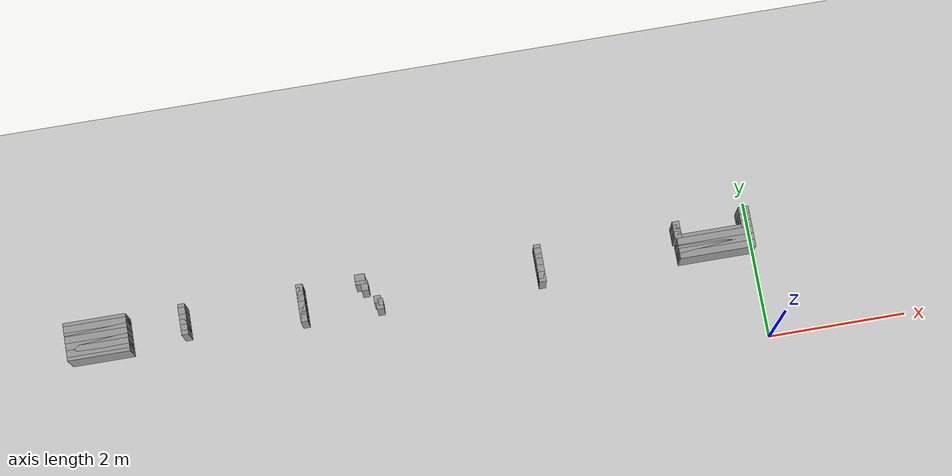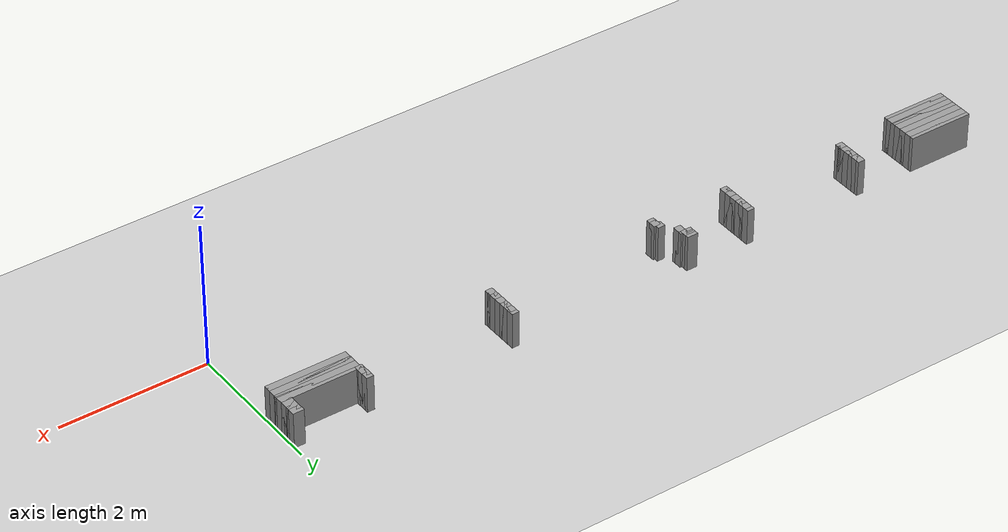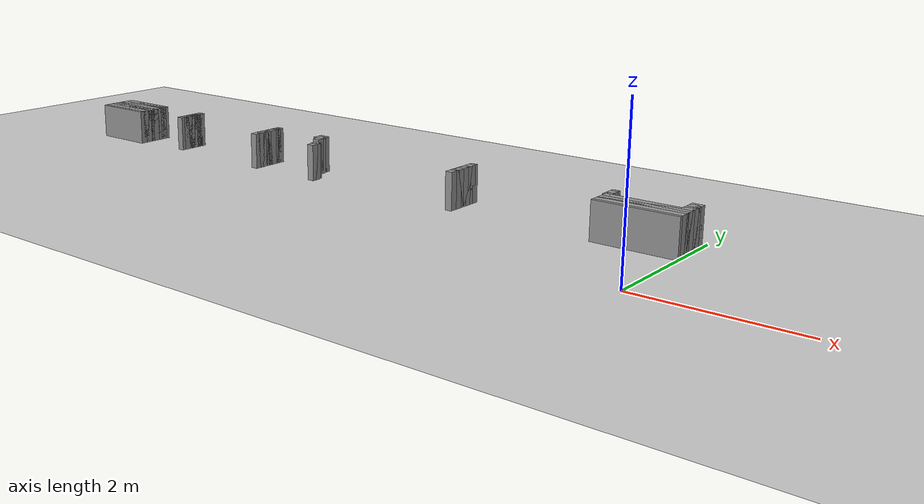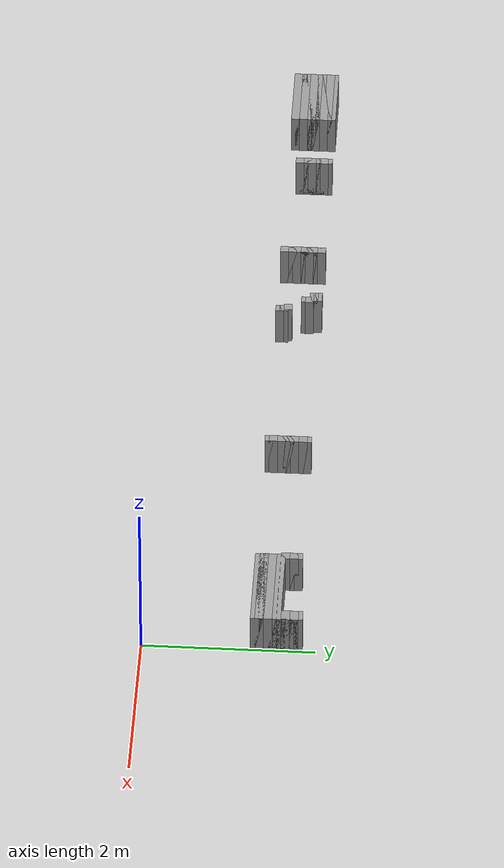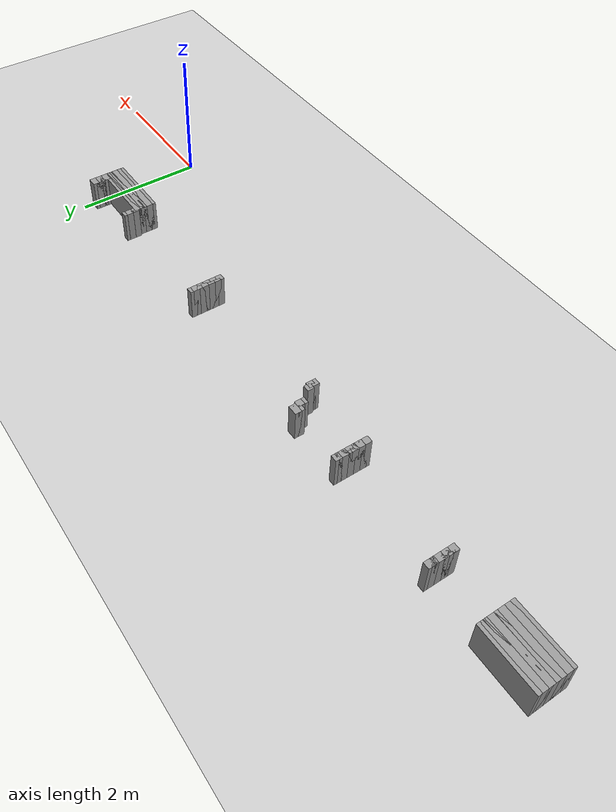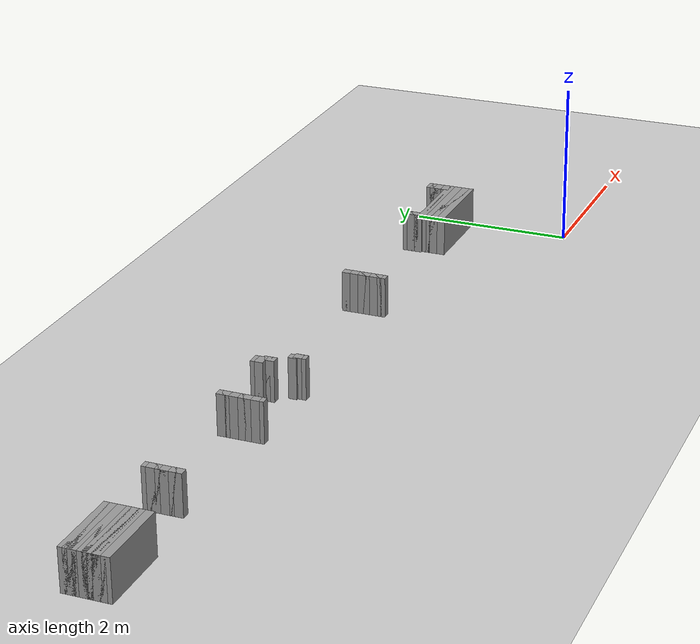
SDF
<sdf version="1.6">
 <world name="GridMap">
  <include><uri>model://sun</uri></include>
  <include><uri>model://ground_plane</uri></include>
  <model name="GridMap">
   <link name="Wall_(11.0,26.0)">
    <collision name="Wall_(11.0,26.0)_Collision">
     <geometry><box><size>1.1 0.1 0.5</size></box></geometry>
     <pose>-0.55 1.3 0.25 0 -0 0</pose>
    </collision>
    <inertial>
     <mass>0.5</mass>
     <pose>0 0.01 0 0 0 0</pose>
     <inertia><ixx>0.004</ixx><ixy>0.001</ixy><ixz>0</ixz><iyy>0.006</iyy><iyz>0</iyz><izz>0.007</izz></inertia>
    </inertial>
    <visual name="Wall_(11.0,26.0)_Visual">
     <geometry><box><size>1.1 0.1 0.5</size></box></geometry>
     <pose>-0.55 1.3 0.25 0 -0 0</pose>
     <material>
      <script><uri>file://media/materials/scripts/gazebo.material</uri><name>Gazebo/Grey</name></script>
      <ambient>1 1 1 1</ambient>
     </material>
     <meta><layer>0</layer></meta>
    </visual>
   </link>
   <link name="Wall_(62.0,26.0)">
    <collision name="Wall_(62.0,26.0)_Collision">
     <geometry><box><size>0.1 0.1 0.5</size></box></geometry>
     <pose>-3.1 1.3 0.25 0 -0 0</pose>
    </collision>
    <inertial>
     <mass>0.5</mass>
     <pose>0 0.01 0 0 0 0</pose>
     <inertia><ixx>0.004</ixx><ixy>0.001</ixy><ixz>0</ixz><iyy>0.006</iyy><iyz>0</iyz><izz>0.007</izz></inertia>
    </inertial>
    <visual name="Wall_(62.0,26.0)_Visual">
     <geometry><box><size>0.1 0.1 0.5</size></box></geometry>
     <pose>-3.1 1.3 0.25 0 -0 0</pose>
     <material>
      <script><uri>file://media/materials/scripts/gazebo.material</uri><name>Gazebo/Grey</name></script>
      <ambient>1 1 1 1</ambient>
     </material>
     <meta><layer>0</layer></meta>
    </visual>
   </link>
   <link name="Wall_(109.0,26.0)">
    <collision name="Wall_(109.0,26.0)_Collision">
     <geometry><box><size>0.1 0.1 0.5</size></box></geometry>
     <pose>-5.45 1.3 0.25 0 -0 0</pose>
    </collision>
    <inertial>
     <mass>0.5</mass>
     <pose>0 0.01 0 0 0 0</pose>
     <inertia><ixx>0.004</ixx><ixy>0.001</ixy><ixz>0</ixz><iyy>0.006</iyy><iyz>0</iyz><izz>0.007</izz></inertia>
    </inertial>
    <visual name="Wall_(109.0,26.0)_Visual">
     <geometry><box><size>0.1 0.1 0.5</size></box></geometry>
     <pose>-5.45 1.3 0.25 0 -0 0</pose>
     <material>
      <script><uri>file://media/materials/scripts/gazebo.material</uri><name>Gazebo/Grey</name></script>
      <ambient>1 1 1 1</ambient>
     </material>
     <meta><layer>0</layer></meta>
    </visual>
   </link>
   <link name="Wall_(131.0,26.0)">
    <collision name="Wall_(131.0,26.0)_Collision">
     <geometry><box><size>0.1 0.1 0.5</size></box></geometry>
     <pose>-6.550000000000001 1.3 0.25 0 -0 0</pose>
    </collision>
    <inertial>
     <mass>0.5</mass>
     <pose>0 0.01 0 0 0 0</pose>
     <inertia><ixx>0.004</ixx><ixy>0.001</ixy><ixz>0</ixz><iyy>0.006</iyy><iyz>0</iyz><izz>0.007</izz></inertia>
    </inertial>
    <visual name="Wall_(131.0,26.0)_Visual">
     <geometry><box><size>0.1 0.1 0.5</size></box></geometry>
     <pose>-6.550000000000001 1.3 0.25 0 -0 0</pose>
     <material>
      <script><uri>file://media/materials/scripts/gazebo.material</uri><name>Gazebo/Grey</name></script>
      <ambient>1 1 1 1</ambient>
     </material>
     <meta><layer>0</layer></meta>
    </visual>
   </link>
   <link name="Wall_(190.0,26.0)">
    <collision name="Wall_(190.0,26.0)_Collision">
     <geometry><box><size>0.9 0.1 0.5</size></box></geometry>
     <pose>-9.5 1.3 0.25 0 -0 0</pose>
    </collision>
    <inertial>
     <mass>0.5</mass>
     <pose>0 0.01 0 0 0 0</pose>
     <inertia><ixx>0.004</ixx><ixy>0.001</ixy><ixz>0</ixz><iyy>0.006</iyy><iyz>0</iyz><izz>0.007</izz></inertia>
    </inertial>
    <visual name="Wall_(190.0,26.0)_Visual">
     <geometry><box><size>0.9 0.1 0.5</size></box></geometry>
     <pose>-9.5 1.3 0.25 0 -0 0</pose>
     <material>
      <script><uri>file://media/materials/scripts/gazebo.material</uri><name>Gazebo/Grey</name></script>
      <ambient>1 1 1 1</ambient>
     </material>
     <meta><layer>0</layer></meta>
    </visual>
   </link>
   <link name="Wall_(11.0,27.0)">
    <collision name="Wall_(11.0,27.0)_Collision">
     <geometry><box><size>1.1 0.1 0.5</size></box></geometry>
     <pose>-0.55 1.35 0.25 0 -0 0</pose>
    </collision>
    <inertial>
     <mass>0.5</mass>
     <pose>0 0.01 0 0 0 0</pose>
     <inertia><ixx>0.004</ixx><ixy>0.001</ixy><ixz>0</ixz><iyy>0.006</iyy><iyz>0</iyz><izz>0.007</izz></inertia>
    </inertial>
    <visual name="Wall_(11.0,27.0)_Visual">
     <geometry><box><size>1.1 0.1 0.5</size></box></geometry>
     <pose>-0.55 1.35 0.25 0 -0 0</pose>
     <material>
      <script><uri>file://media/materials/scripts/gazebo.material</uri><name>Gazebo/Grey</name></script>
      <ambient>1 1 1 1</ambient>
     </material>
     <meta><layer>0</layer></meta>
    </visual>
   </link>
   <link name="Wall_(62.0,27.0)">
    <collision name="Wall_(62.0,27.0)_Collision">
     <geometry><box><size>0.1 0.1 0.5</size></box></geometry>
     <pose>-3.1 1.35 0.25 0 -0 0</pose>
    </collision>
    <inertial>
     <mass>0.5</mass>
     <pose>0 0.01 0 0 0 0</pose>
     <inertia><ixx>0.004</ixx><ixy>0.001</ixy><ixz>0</ixz><iyy>0.006</iyy><iyz>0</iyz><izz>0.007</izz></inertia>
    </inertial>
    <visual name="Wall_(62.0,27.0)_Visual">
     <geometry><box><size>0.1 0.1 0.5</size></box></geometry>
     <pose>-3.1 1.35 0.25 0 -0 0</pose>
     <material>
      <script><uri>file://media/materials/scripts/gazebo.material</uri><name>Gazebo/Grey</name></script>
      <ambient>1 1 1 1</ambient>
     </material>
     <meta><layer>0</layer></meta>
    </visual>
   </link>
   <link name="Wall_(109.0,27.0)">
    <collision name="Wall_(109.0,27.0)_Collision">
     <geometry><box><size>0.1 0.1 0.5</size></box></geometry>
     <pose>-5.45 1.35 0.25 0 -0 0</pose>
    </collision>
    <inertial>
     <mass>0.5</mass>
     <pose>0 0.01 0 0 0 0</pose>
     <inertia><ixx>0.004</ixx><ixy>0.001</ixy><ixz>0</ixz><iyy>0.006</iyy><iyz>0</iyz><izz>0.007</izz></inertia>
    </inertial>
    <visual name="Wall_(109.0,27.0)_Visual">
     <geometry><box><size>0.1 0.1 0.5</size></box></geometry>
     <pose>-5.45 1.35 0.25 0 -0 0</pose>
     <material>
      <script><uri>file://media/materials/scripts/gazebo.material</uri><name>Gazebo/Grey</name></script>
      <ambient>1 1 1 1</ambient>
     </material>
     <meta><layer>0</layer></meta>
    </visual>
   </link>
   <link name="Wall_(131.0,27.0)">
    <collision name="Wall_(131.0,27.0)_Collision">
     <geometry><box><size>0.1 0.1 0.5</size></box></geometry>
     <pose>-6.550000000000001 1.35 0.25 0 -0 0</pose>
    </collision>
    <inertial>
     <mass>0.5</mass>
     <pose>0 0.01 0 0 0 0</pose>
     <inertia><ixx>0.004</ixx><ixy>0.001</ixy><ixz>0</ixz><iyy>0.006</iyy><iyz>0</iyz><izz>0.007</izz></inertia>
    </inertial>
    <visual name="Wall_(131.0,27.0)_Visual">
     <geometry><box><size>0.1 0.1 0.5</size></box></geometry>
     <pose>-6.550000000000001 1.35 0.25 0 -0 0</pose>
     <material>
      <script><uri>file://media/materials/scripts/gazebo.material</uri><name>Gazebo/Grey</name></script>
      <ambient>1 1 1 1</ambient>
     </material>
     <meta><layer>0</layer></meta>
    </visual>
   </link>
   <link name="Wall_(190.0,27.0)">
    <collision name="Wall_(190.0,27.0)_Collision">
     <geometry><box><size>0.9 0.1 0.5</size></box></geometry>
     <pose>-9.5 1.35 0.25 0 -0 0</pose>
    </collision>
    <inertial>
     <mass>0.5</mass>
     <pose>0 0.01 0 0 0 0</pose>
     <inertia><ixx>0.004</ixx><ixy>0.001</ixy><ixz>0</ixz><iyy>0.006</iyy><iyz>0</iyz><izz>0.007</izz></inertia>
    </inertial>
    <visual name="Wall_(190.0,27.0)_Visual">
     <geometry><box><size>0.9 0.1 0.5</size></box></geometry>
     <pose>-9.5 1.35 0.25 0 -0 0</pose>
     <material>
      <script><uri>file://media/materials/scripts/gazebo.material</uri><name>Gazebo/Grey</name></script>
      <ambient>1 1 1 1</ambient>
     </material>
     <meta><layer>0</layer></meta>
    </visual>
   </link>
   <link name="Wall_(11.0,28.0)">
    <collision name="Wall_(11.0,28.0)_Collision">
     <geometry><box><size>1.1 0.1 0.5</size></box></geometry>
     <pose>-0.55 1.4000000000000001 0.25 0 -0 0</pose>
    </collision>
    <inertial>
     <mass>0.5</mass>
     <pose>0 0.01 0 0 0 0</pose>
     <inertia><ixx>0.004</ixx><ixy>0.001</ixy><ixz>0</ixz><iyy>0.006</iyy><iyz>0</iyz><izz>0.007</izz></inertia>
    </inertial>
    <visual name="Wall_(11.0,28.0)_Visual">
     <geometry><box><size>1.1 0.1 0.5</size></box></geometry>
     <pose>-0.55 1.4000000000000001 0.25 0 -0 0</pose>
     <material>
      <script><uri>file://media/materials/scripts/gazebo.material</uri><name>Gazebo/Grey</name></script>
      <ambient>1 1 1 1</ambient>
     </material>
     <meta><layer>0</layer></meta>
    </visual>
   </link>
   <link name="Wall_(62.0,28.0)">
    <collision name="Wall_(62.0,28.0)_Collision">
     <geometry><box><size>0.1 0.1 0.5</size></box></geometry>
     <pose>-3.1 1.4000000000000001 0.25 0 -0 0</pose>
    </collision>
    <inertial>
     <mass>0.5</mass>
     <pose>0 0.01 0 0 0 0</pose>
     <inertia><ixx>0.004</ixx><ixy>0.001</ixy><ixz>0</ixz><iyy>0.006</iyy><iyz>0</iyz><izz>0.007</izz></inertia>
    </inertial>
    <visual name="Wall_(62.0,28.0)_Visual">
     <geometry><box><size>0.1 0.1 0.5</size></box></geometry>
     <pose>-3.1 1.4000000000000001 0.25 0 -0 0</pose>
     <material>
      <script><uri>file://media/materials/scripts/gazebo.material</uri><name>Gazebo/Grey</name></script>
      <ambient>1 1 1 1</ambient>
     </material>
     <meta><layer>0</layer></meta>
    </visual>
   </link>
   <link name="Wall_(109.5,28.0)">
    <collision name="Wall_(109.5,28.0)_Collision">
     <geometry><box><size>0.1 0.1 0.5</size></box></geometry>
     <pose>-5.4750000000000005 1.4000000000000001 0.25 0 -0 0</pose>
    </collision>
    <inertial>
     <mass>0.5</mass>
     <pose>0 0.01 0 0 0 0</pose>
     <inertia><ixx>0.004</ixx><ixy>0.001</ixy><ixz>0</ixz><iyy>0.006</iyy><iyz>0</iyz><izz>0.007</izz></inertia>
    </inertial>
    <visual name="Wall_(109.5,28.0)_Visual">
     <geometry><box><size>0.1 0.1 0.5</size></box></geometry>
     <pose>-5.4750000000000005 1.4000000000000001 0.25 0 -0 0</pose>
     <material>
      <script><uri>file://media/materials/scripts/gazebo.material</uri><name>Gazebo/Grey</name></script>
      <ambient>1 1 1 1</ambient>
     </material>
     <meta><layer>0</layer></meta>
    </visual>
   </link>
   <link name="Wall_(131.0,28.0)">
    <collision name="Wall_(131.0,28.0)_Collision">
     <geometry><box><size>0.1 0.1 0.5</size></box></geometry>
     <pose>-6.550000000000001 1.4000000000000001 0.25 0 -0 0</pose>
    </collision>
    <inertial>
     <mass>0.5</mass>
     <pose>0 0.01 0 0 0 0</pose>
     <inertia><ixx>0.004</ixx><ixy>0.001</ixy><ixz>0</ixz><iyy>0.006</iyy><iyz>0</iyz><izz>0.007</izz></inertia>
    </inertial>
    <visual name="Wall_(131.0,28.0)_Visual">
     <geometry><box><size>0.1 0.1 0.5</size></box></geometry>
     <pose>-6.550000000000001 1.4000000000000001 0.25 0 -0 0</pose>
     <material>
      <script><uri>file://media/materials/scripts/gazebo.material</uri><name>Gazebo/Grey</name></script>
      <ambient>1 1 1 1</ambient>
     </material>
     <meta><layer>0</layer></meta>
    </visual>
   </link>
   <link name="Wall_(165.0,28.0)">
    <collision name="Wall_(165.0,28.0)_Collision">
     <geometry><box><size>0.1 0.1 0.5</size></box></geometry>
     <pose>-8.25 1.4000000000000001 0.25 0 -0 0</pose>
    </collision>
    <inertial>
     <mass>0.5</mass>
     <pose>0 0.01 0 0 0 0</pose>
     <inertia><ixx>0.004</ixx><ixy>0.001</ixy><ixz>0</ixz><iyy>0.006</iyy><iyz>0</iyz><izz>0.007</izz></inertia>
    </inertial>
    <visual name="Wall_(165.0,28.0)_Visual">
     <geometry><box><size>0.1 0.1 0.5</size></box></geometry>
     <pose>-8.25 1.4000000000000001 0.25 0 -0 0</pose>
     <material>
      <script><uri>file://media/materials/scripts/gazebo.material</uri><name>Gazebo/Grey</name></script>
      <ambient>1 1 1 1</ambient>
     </material>
     <meta><layer>0</layer></meta>
    </visual>
   </link>
   <link name="Wall_(190.0,28.0)">
    <collision name="Wall_(190.0,28.0)_Collision">
     <geometry><box><size>0.9 0.1 0.5</size></box></geometry>
     <pose>-9.5 1.4000000000000001 0.25 0 -0 0</pose>
    </collision>
    <inertial>
     <mass>0.5</mass>
     <pose>0 0.01 0 0 0 0</pose>
     <inertia><ixx>0.004</ixx><ixy>0.001</ixy><ixz>0</ixz><iyy>0.006</iyy><iyz>0</iyz><izz>0.007</izz></inertia>
    </inertial>
    <visual name="Wall_(190.0,28.0)_Visual">
     <geometry><box><size>0.9 0.1 0.5</size></box></geometry>
     <pose>-9.5 1.4000000000000001 0.25 0 -0 0</pose>
     <material>
      <script><uri>file://media/materials/scripts/gazebo.material</uri><name>Gazebo/Grey</name></script>
      <ambient>1 1 1 1</ambient>
     </material>
     <meta><layer>0</layer></meta>
    </visual>
   </link>
   <link name="Wall_(11.0,29.0)">
    <collision name="Wall_(11.0,29.0)_Collision">
     <geometry><box><size>1.1 0.1 0.5</size></box></geometry>
     <pose>-0.55 1.4500000000000002 0.25 0 -0 0</pose>
    </collision>
    <inertial>
     <mass>0.5</mass>
     <pose>0 0.01 0 0 0 0</pose>
     <inertia><ixx>0.004</ixx><ixy>0.001</ixy><ixz>0</ixz><iyy>0.006</iyy><iyz>0</iyz><izz>0.007</izz></inertia>
    </inertial>
    <visual name="Wall_(11.0,29.0)_Visual">
     <geometry><box><size>1.1 0.1 0.5</size></box></geometry>
     <pose>-0.55 1.4500000000000002 0.25 0 -0 0</pose>
     <material>
      <script><uri>file://media/materials/scripts/gazebo.material</uri><name>Gazebo/Grey</name></script>
      <ambient>1 1 1 1</ambient>
     </material>
     <meta><layer>0</layer></meta>
    </visual>
   </link>
   <link name="Wall_(62.0,29.0)">
    <collision name="Wall_(62.0,29.0)_Collision">
     <geometry><box><size>0.1 0.1 0.5</size></box></geometry>
     <pose>-3.1 1.4500000000000002 0.25 0 -0 0</pose>
    </collision>
    <inertial>
     <mass>0.5</mass>
     <pose>0 0.01 0 0 0 0</pose>
     <inertia><ixx>0.004</ixx><ixy>0.001</ixy><ixz>0</ixz><iyy>0.006</iyy><iyz>0</iyz><izz>0.007</izz></inertia>
    </inertial>
    <visual name="Wall_(62.0,29.0)_Visual">
     <geometry><box><size>0.1 0.1 0.5</size></box></geometry>
     <pose>-3.1 1.4500000000000002 0.25 0 -0 0</pose>
     <material>
      <script><uri>file://media/materials/scripts/gazebo.material</uri><name>Gazebo/Grey</name></script>
      <ambient>1 1 1 1</ambient>
     </material>
     <meta><layer>0</layer></meta>
    </visual>
   </link>
   <link name="Wall_(131.0,29.0)">
    <collision name="Wall_(131.0,29.0)_Collision">
     <geometry><box><size>0.1 0.1 0.5</size></box></geometry>
     <pose>-6.550000000000001 1.4500000000000002 0.25 0 -0 0</pose>
    </collision>
    <inertial>
     <mass>0.5</mass>
     <pose>0 0.01 0 0 0 0</pose>
     <inertia><ixx>0.004</ixx><ixy>0.001</ixy><ixz>0</ixz><iyy>0.006</iyy><iyz>0</iyz><izz>0.007</izz></inertia>
    </inertial>
    <visual name="Wall_(131.0,29.0)_Visual">
     <geometry><box><size>0.1 0.1 0.5</size></box></geometry>
     <pose>-6.550000000000001 1.4500000000000002 0.25 0 -0 0</pose>
     <material>
      <script><uri>file://media/materials/scripts/gazebo.material</uri><name>Gazebo/Grey</name></script>
      <ambient>1 1 1 1</ambient>
     </material>
     <meta><layer>0</layer></meta>
    </visual>
   </link>
   <link name="Wall_(165.0,29.0)">
    <collision name="Wall_(165.0,29.0)_Collision">
     <geometry><box><size>0.1 0.1 0.5</size></box></geometry>
     <pose>-8.25 1.4500000000000002 0.25 0 -0 0</pose>
    </collision>
    <inertial>
     <mass>0.5</mass>
     <pose>0 0.01 0 0 0 0</pose>
     <inertia><ixx>0.004</ixx><ixy>0.001</ixy><ixz>0</ixz><iyy>0.006</iyy><iyz>0</iyz><izz>0.007</izz></inertia>
    </inertial>
    <visual name="Wall_(165.0,29.0)_Visual">
     <geometry><box><size>0.1 0.1 0.5</size></box></geometry>
     <pose>-8.25 1.4500000000000002 0.25 0 -0 0</pose>
     <material>
      <script><uri>file://media/materials/scripts/gazebo.material</uri><name>Gazebo/Grey</name></script>
      <ambient>1 1 1 1</ambient>
     </material>
     <meta><layer>0</layer></meta>
    </visual>
   </link>
   <link name="Wall_(190.0,29.0)">
    <collision name="Wall_(190.0,29.0)_Collision">
     <geometry><box><size>0.9 0.1 0.5</size></box></geometry>
     <pose>-9.5 1.4500000000000002 0.25 0 -0 0</pose>
    </collision>
    <inertial>
     <mass>0.5</mass>
     <pose>0 0.01 0 0 0 0</pose>
     <inertia><ixx>0.004</ixx><ixy>0.001</ixy><ixz>0</ixz><iyy>0.006</iyy><iyz>0</iyz><izz>0.007</izz></inertia>
    </inertial>
    <visual name="Wall_(190.0,29.0)_Visual">
     <geometry><box><size>0.9 0.1 0.5</size></box></geometry>
     <pose>-9.5 1.4500000000000002 0.25 0 -0 0</pose>
     <material>
      <script><uri>file://media/materials/scripts/gazebo.material</uri><name>Gazebo/Grey</name></script>
      <ambient>1 1 1 1</ambient>
     </material>
     <meta><layer>0</layer></meta>
    </visual>
   </link>
   <link name="Wall_(11.0,30.0)">
    <collision name="Wall_(11.0,30.0)_Collision">
     <geometry><box><size>1.1 0.1 0.5</size></box></geometry>
     <pose>-0.55 1.5 0.25 0 -0 0</pose>
    </collision>
    <inertial>
     <mass>0.5</mass>
     <pose>0 0.01 0 0 0 0</pose>
     <inertia><ixx>0.004</ixx><ixy>0.001</ixy><ixz>0</ixz><iyy>0.006</iyy><iyz>0</iyz><izz>0.007</izz></inertia>
    </inertial>
    <visual name="Wall_(11.0,30.0)_Visual">
     <geometry><box><size>1.1 0.1 0.5</size></box></geometry>
     <pose>-0.55 1.5 0.25 0 -0 0</pose>
     <material>
      <script><uri>file://media/materials/scripts/gazebo.material</uri><name>Gazebo/Grey</name></script>
      <ambient>1 1 1 1</ambient>
     </material>
     <meta><layer>0</layer></meta>
    </visual>
   </link>
   <link name="Wall_(62.0,30.0)">
    <collision name="Wall_(62.0,30.0)_Collision">
     <geometry><box><size>0.1 0.1 0.5</size></box></geometry>
     <pose>-3.1 1.5 0.25 0 -0 0</pose>
    </collision>
    <inertial>
     <mass>0.5</mass>
     <pose>0 0.01 0 0 0 0</pose>
     <inertia><ixx>0.004</ixx><ixy>0.001</ixy><ixz>0</ixz><iyy>0.006</iyy><iyz>0</iyz><izz>0.007</izz></inertia>
    </inertial>
    <visual name="Wall_(62.0,30.0)_Visual">
     <geometry><box><size>0.1 0.1 0.5</size></box></geometry>
     <pose>-3.1 1.5 0.25 0 -0 0</pose>
     <material>
      <script><uri>file://media/materials/scripts/gazebo.material</uri><name>Gazebo/Grey</name></script>
      <ambient>1 1 1 1</ambient>
     </material>
     <meta><layer>0</layer></meta>
    </visual>
   </link>
   <link name="Wall_(131.0,30.0)">
    <collision name="Wall_(131.0,30.0)_Collision">
     <geometry><box><size>0.1 0.1 0.5</size></box></geometry>
     <pose>-6.550000000000001 1.5 0.25 0 -0 0</pose>
    </collision>
    <inertial>
     <mass>0.5</mass>
     <pose>0 0.01 0 0 0 0</pose>
     <inertia><ixx>0.004</ixx><ixy>0.001</ixy><ixz>0</ixz><iyy>0.006</iyy><iyz>0</iyz><izz>0.007</izz></inertia>
    </inertial>
    <visual name="Wall_(131.0,30.0)_Visual">
     <geometry><box><size>0.1 0.1 0.5</size></box></geometry>
     <pose>-6.550000000000001 1.5 0.25 0 -0 0</pose>
     <material>
      <script><uri>file://media/materials/scripts/gazebo.material</uri><name>Gazebo/Grey</name></script>
      <ambient>1 1 1 1</ambient>
     </material>
     <meta><layer>0</layer></meta>
    </visual>
   </link>
   <link name="Wall_(165.0,30.0)">
    <collision name="Wall_(165.0,30.0)_Collision">
     <geometry><box><size>0.1 0.1 0.5</size></box></geometry>
     <pose>-8.25 1.5 0.25 0 -0 0</pose>
    </collision>
    <inertial>
     <mass>0.5</mass>
     <pose>0 0.01 0 0 0 0</pose>
     <inertia><ixx>0.004</ixx><ixy>0.001</ixy><ixz>0</ixz><iyy>0.006</iyy><iyz>0</iyz><izz>0.007</izz></inertia>
    </inertial>
    <visual name="Wall_(165.0,30.0)_Visual">
     <geometry><box><size>0.1 0.1 0.5</size></box></geometry>
     <pose>-8.25 1.5 0.25 0 -0 0</pose>
     <material>
      <script><uri>file://media/materials/scripts/gazebo.material</uri><name>Gazebo/Grey</name></script>
      <ambient>1 1 1 1</ambient>
     </material>
     <meta><layer>0</layer></meta>
    </visual>
   </link>
   <link name="Wall_(190.0,30.0)">
    <collision name="Wall_(190.0,30.0)_Collision">
     <geometry><box><size>0.9 0.1 0.5</size></box></geometry>
     <pose>-9.5 1.5 0.25 0 -0 0</pose>
    </collision>
    <inertial>
     <mass>0.5</mass>
     <pose>0 0.01 0 0 0 0</pose>
     <inertia><ixx>0.004</ixx><ixy>0.001</ixy><ixz>0</ixz><iyy>0.006</iyy><iyz>0</iyz><izz>0.007</izz></inertia>
    </inertial>
    <visual name="Wall_(190.0,30.0)_Visual">
     <geometry><box><size>0.9 0.1 0.5</size></box></geometry>
     <pose>-9.5 1.5 0.25 0 -0 0</pose>
     <material>
      <script><uri>file://media/materials/scripts/gazebo.material</uri><name>Gazebo/Grey</name></script>
      <ambient>1 1 1 1</ambient>
     </material>
     <meta><layer>0</layer></meta>
    </visual>
   </link>
   <link name="Wall_(11.0,31.0)">
    <collision name="Wall_(11.0,31.0)_Collision">
     <geometry><box><size>1.1 0.1 0.5</size></box></geometry>
     <pose>-0.55 1.55 0.25 0 -0 0</pose>
    </collision>
    <inertial>
     <mass>0.5</mass>
     <pose>0 0.01 0 0 0 0</pose>
     <inertia><ixx>0.004</ixx><ixy>0.001</ixy><ixz>0</ixz><iyy>0.006</iyy><iyz>0</iyz><izz>0.007</izz></inertia>
    </inertial>
    <visual name="Wall_(11.0,31.0)_Visual">
     <geometry><box><size>1.1 0.1 0.5</size></box></geometry>
     <pose>-0.55 1.55 0.25 0 -0 0</pose>
     <material>
      <script><uri>file://media/materials/scripts/gazebo.material</uri><name>Gazebo/Grey</name></script>
      <ambient>1 1 1 1</ambient>
     </material>
     <meta><layer>0</layer></meta>
    </visual>
   </link>
   <link name="Wall_(62.0,31.0)">
    <collision name="Wall_(62.0,31.0)_Collision">
     <geometry><box><size>0.1 0.1 0.5</size></box></geometry>
     <pose>-3.1 1.55 0.25 0 -0 0</pose>
    </collision>
    <inertial>
     <mass>0.5</mass>
     <pose>0 0.01 0 0 0 0</pose>
     <inertia><ixx>0.004</ixx><ixy>0.001</ixy><ixz>0</ixz><iyy>0.006</iyy><iyz>0</iyz><izz>0.007</izz></inertia>
    </inertial>
    <visual name="Wall_(62.0,31.0)_Visual">
     <geometry><box><size>0.1 0.1 0.5</size></box></geometry>
     <pose>-3.1 1.55 0.25 0 -0 0</pose>
     <material>
      <script><uri>file://media/materials/scripts/gazebo.material</uri><name>Gazebo/Grey</name></script>
      <ambient>1 1 1 1</ambient>
     </material>
     <meta><layer>0</layer></meta>
    </visual>
   </link>
   <link name="Wall_(131.0,31.0)">
    <collision name="Wall_(131.0,31.0)_Collision">
     <geometry><box><size>0.1 0.1 0.5</size></box></geometry>
     <pose>-6.550000000000001 1.55 0.25 0 -0 0</pose>
    </collision>
    <inertial>
     <mass>0.5</mass>
     <pose>0 0.01 0 0 0 0</pose>
     <inertia><ixx>0.004</ixx><ixy>0.001</ixy><ixz>0</ixz><iyy>0.006</iyy><iyz>0</iyz><izz>0.007</izz></inertia>
    </inertial>
    <visual name="Wall_(131.0,31.0)_Visual">
     <geometry><box><size>0.1 0.1 0.5</size></box></geometry>
     <pose>-6.550000000000001 1.55 0.25 0 -0 0</pose>
     <material>
      <script><uri>file://media/materials/scripts/gazebo.material</uri><name>Gazebo/Grey</name></script>
      <ambient>1 1 1 1</ambient>
     </material>
     <meta><layer>0</layer></meta>
    </visual>
   </link>
   <link name="Wall_(165.0,31.0)">
    <collision name="Wall_(165.0,31.0)_Collision">
     <geometry><box><size>0.1 0.1 0.5</size></box></geometry>
     <pose>-8.25 1.55 0.25 0 -0 0</pose>
    </collision>
    <inertial>
     <mass>0.5</mass>
     <pose>0 0.01 0 0 0 0</pose>
     <inertia><ixx>0.004</ixx><ixy>0.001</ixy><ixz>0</ixz><iyy>0.006</iyy><iyz>0</iyz><izz>0.007</izz></inertia>
    </inertial>
    <visual name="Wall_(165.0,31.0)_Visual">
     <geometry><box><size>0.1 0.1 0.5</size></box></geometry>
     <pose>-8.25 1.55 0.25 0 -0 0</pose>
     <material>
      <script><uri>file://media/materials/scripts/gazebo.material</uri><name>Gazebo/Grey</name></script>
      <ambient>1 1 1 1</ambient>
     </material>
     <meta><layer>0</layer></meta>
    </visual>
   </link>
   <link name="Wall_(190.0,31.0)">
    <collision name="Wall_(190.0,31.0)_Collision">
     <geometry><box><size>0.9 0.1 0.5</size></box></geometry>
     <pose>-9.5 1.55 0.25 0 -0 0</pose>
    </collision>
    <inertial>
     <mass>0.5</mass>
     <pose>0 0.01 0 0 0 0</pose>
     <inertia><ixx>0.004</ixx><ixy>0.001</ixy><ixz>0</ixz><iyy>0.006</iyy><iyz>0</iyz><izz>0.007</izz></inertia>
    </inertial>
    <visual name="Wall_(190.0,31.0)_Visual">
     <geometry><box><size>0.9 0.1 0.5</size></box></geometry>
     <pose>-9.5 1.55 0.25 0 -0 0</pose>
     <material>
      <script><uri>file://media/materials/scripts/gazebo.material</uri><name>Gazebo/Grey</name></script>
      <ambient>1 1 1 1</ambient>
     </material>
     <meta><layer>0</layer></meta>
    </visual>
   </link>
   <link name="Wall_(1.5,32.0)">
    <collision name="Wall_(1.5,32.0)_Collision">
     <geometry><box><size>0.15000000000000002 0.1 0.5</size></box></geometry>
     <pose>-0.07500000000000001 1.6 0.25 0 -0 0</pose>
    </collision>
    <inertial>
     <mass>0.5</mass>
     <pose>0 0.01 0 0 0 0</pose>
     <inertia><ixx>0.004</ixx><ixy>0.001</ixy><ixz>0</ixz><iyy>0.006</iyy><iyz>0</iyz><izz>0.007</izz></inertia>
    </inertial>
    <visual name="Wall_(1.5,32.0)_Visual">
     <geometry><box><size>0.15000000000000002 0.1 0.5</size></box></geometry>
     <pose>-0.07500000000000001 1.6 0.25 0 -0 0</pose>
     <material>
      <script><uri>file://media/materials/scripts/gazebo.material</uri><name>Gazebo/Grey</name></script>
      <ambient>1 1 1 1</ambient>
     </material>
     <meta><layer>0</layer></meta>
    </visual>
   </link>
   <link name="Wall_(21.5,32.0)">
    <collision name="Wall_(21.5,32.0)_Collision">
     <geometry><box><size>0.1 0.1 0.5</size></box></geometry>
     <pose>-1.075 1.6 0.25 0 -0 0</pose>
    </collision>
    <inertial>
     <mass>0.5</mass>
     <pose>0 0.01 0 0 0 0</pose>
     <inertia><ixx>0.004</ixx><ixy>0.001</ixy><ixz>0</ixz><iyy>0.006</iyy><iyz>0</iyz><izz>0.007</izz></inertia>
    </inertial>
    <visual name="Wall_(21.5,32.0)_Visual">
     <geometry><box><size>0.1 0.1 0.5</size></box></geometry>
     <pose>-1.075 1.6 0.25 0 -0 0</pose>
     <material>
      <script><uri>file://media/materials/scripts/gazebo.material</uri><name>Gazebo/Grey</name></script>
      <ambient>1 1 1 1</ambient>
     </material>
     <meta><layer>0</layer></meta>
    </visual>
   </link>
   <link name="Wall_(62.0,32.0)">
    <collision name="Wall_(62.0,32.0)_Collision">
     <geometry><box><size>0.1 0.1 0.5</size></box></geometry>
     <pose>-3.1 1.6 0.25 0 -0 0</pose>
    </collision>
    <inertial>
     <mass>0.5</mass>
     <pose>0 0.01 0 0 0 0</pose>
     <inertia><ixx>0.004</ixx><ixy>0.001</ixy><ixz>0</ixz><iyy>0.006</iyy><iyz>0</iyz><izz>0.007</izz></inertia>
    </inertial>
    <visual name="Wall_(62.0,32.0)_Visual">
     <geometry><box><size>0.1 0.1 0.5</size></box></geometry>
     <pose>-3.1 1.6 0.25 0 -0 0</pose>
     <material>
      <script><uri>file://media/materials/scripts/gazebo.material</uri><name>Gazebo/Grey</name></script>
      <ambient>1 1 1 1</ambient>
     </material>
     <meta><layer>0</layer></meta>
    </visual>
   </link>
   <link name="Wall_(112.5,32.0)">
    <collision name="Wall_(112.5,32.0)_Collision">
     <geometry><box><size>0.1 0.1 0.5</size></box></geometry>
     <pose>-5.625 1.6 0.25 0 -0 0</pose>
    </collision>
    <inertial>
     <mass>0.5</mass>
     <pose>0 0.01 0 0 0 0</pose>
     <inertia><ixx>0.004</ixx><ixy>0.001</ixy><ixz>0</ixz><iyy>0.006</iyy><iyz>0</iyz><izz>0.007</izz></inertia>
    </inertial>
    <visual name="Wall_(112.5,32.0)_Visual">
     <geometry><box><size>0.1 0.1 0.5</size></box></geometry>
     <pose>-5.625 1.6 0.25 0 -0 0</pose>
     <material>
      <script><uri>file://media/materials/scripts/gazebo.material</uri><name>Gazebo/Grey</name></script>
      <ambient>1 1 1 1</ambient>
     </material>
     <meta><layer>0</layer></meta>
    </visual>
   </link>
   <link name="Wall_(131.0,32.0)">
    <collision name="Wall_(131.0,32.0)_Collision">
     <geometry><box><size>0.1 0.1 0.5</size></box></geometry>
     <pose>-6.550000000000001 1.6 0.25 0 -0 0</pose>
    </collision>
    <inertial>
     <mass>0.5</mass>
     <pose>0 0.01 0 0 0 0</pose>
     <inertia><ixx>0.004</ixx><ixy>0.001</ixy><ixz>0</ixz><iyy>0.006</iyy><iyz>0</iyz><izz>0.007</izz></inertia>
    </inertial>
    <visual name="Wall_(131.0,32.0)_Visual">
     <geometry><box><size>0.1 0.1 0.5</size></box></geometry>
     <pose>-6.550000000000001 1.6 0.25 0 -0 0</pose>
     <material>
      <script><uri>file://media/materials/scripts/gazebo.material</uri><name>Gazebo/Grey</name></script>
      <ambient>1 1 1 1</ambient>
     </material>
     <meta><layer>0</layer></meta>
    </visual>
   </link>
   <link name="Wall_(165.0,32.0)">
    <collision name="Wall_(165.0,32.0)_Collision">
     <geometry><box><size>0.1 0.1 0.5</size></box></geometry>
     <pose>-8.25 1.6 0.25 0 -0 0</pose>
    </collision>
    <inertial>
     <mass>0.5</mass>
     <pose>0 0.01 0 0 0 0</pose>
     <inertia><ixx>0.004</ixx><ixy>0.001</ixy><ixz>0</ixz><iyy>0.006</iyy><iyz>0</iyz><izz>0.007</izz></inertia>
    </inertial>
    <visual name="Wall_(165.0,32.0)_Visual">
     <geometry><box><size>0.1 0.1 0.5</size></box></geometry>
     <pose>-8.25 1.6 0.25 0 -0 0</pose>
     <material>
      <script><uri>file://media/materials/scripts/gazebo.material</uri><name>Gazebo/Grey</name></script>
      <ambient>1 1 1 1</ambient>
     </material>
     <meta><layer>0</layer></meta>
    </visual>
   </link>
   <link name="Wall_(190.0,32.0)">
    <collision name="Wall_(190.0,32.0)_Collision">
     <geometry><box><size>0.9 0.1 0.5</size></box></geometry>
     <pose>-9.5 1.6 0.25 0 -0 0</pose>
    </collision>
    <inertial>
     <mass>0.5</mass>
     <pose>0 0.01 0 0 0 0</pose>
     <inertia><ixx>0.004</ixx><ixy>0.001</ixy><ixz>0</ixz><iyy>0.006</iyy><iyz>0</iyz><izz>0.007</izz></inertia>
    </inertial>
    <visual name="Wall_(190.0,32.0)_Visual">
     <geometry><box><size>0.9 0.1 0.5</size></box></geometry>
     <pose>-9.5 1.6 0.25 0 -0 0</pose>
     <material>
      <script><uri>file://media/materials/scripts/gazebo.material</uri><name>Gazebo/Grey</name></script>
      <ambient>1 1 1 1</ambient>
     </material>
     <meta><layer>0</layer></meta>
    </visual>
   </link>
   <link name="Wall_(1.5,33.0)">
    <collision name="Wall_(1.5,33.0)_Collision">
     <geometry><box><size>0.15000000000000002 0.1 0.5</size></box></geometry>
     <pose>-0.07500000000000001 1.6500000000000001 0.25 0 -0 0</pose>
    </collision>
    <inertial>
     <mass>0.5</mass>
     <pose>0 0.01 0 0 0 0</pose>
     <inertia><ixx>0.004</ixx><ixy>0.001</ixy><ixz>0</ixz><iyy>0.006</iyy><iyz>0</iyz><izz>0.007</izz></inertia>
    </inertial>
    <visual name="Wall_(1.5,33.0)_Visual">
     <geometry><box><size>0.15000000000000002 0.1 0.5</size></box></geometry>
     <pose>-0.07500000000000001 1.6500000000000001 0.25 0 -0 0</pose>
     <material>
      <script><uri>file://media/materials/scripts/gazebo.material</uri><name>Gazebo/Grey</name></script>
      <ambient>1 1 1 1</ambient>
     </material>
     <meta><layer>0</layer></meta>
    </visual>
   </link>
   <link name="Wall_(21.5,33.0)">
    <collision name="Wall_(21.5,33.0)_Collision">
     <geometry><box><size>0.1 0.1 0.5</size></box></geometry>
     <pose>-1.075 1.6500000000000001 0.25 0 -0 0</pose>
    </collision>
    <inertial>
     <mass>0.5</mass>
     <pose>0 0.01 0 0 0 0</pose>
     <inertia><ixx>0.004</ixx><ixy>0.001</ixy><ixz>0</ixz><iyy>0.006</iyy><iyz>0</iyz><izz>0.007</izz></inertia>
    </inertial>
    <visual name="Wall_(21.5,33.0)_Visual">
     <geometry><box><size>0.1 0.1 0.5</size></box></geometry>
     <pose>-1.075 1.6500000000000001 0.25 0 -0 0</pose>
     <material>
      <script><uri>file://media/materials/scripts/gazebo.material</uri><name>Gazebo/Grey</name></script>
      <ambient>1 1 1 1</ambient>
     </material>
     <meta><layer>0</layer></meta>
    </visual>
   </link>
   <link name="Wall_(62.0,33.0)">
    <collision name="Wall_(62.0,33.0)_Collision">
     <geometry><box><size>0.1 0.1 0.5</size></box></geometry>
     <pose>-3.1 1.6500000000000001 0.25 0 -0 0</pose>
    </collision>
    <inertial>
     <mass>0.5</mass>
     <pose>0 0.01 0 0 0 0</pose>
     <inertia><ixx>0.004</ixx><ixy>0.001</ixy><ixz>0</ixz><iyy>0.006</iyy><iyz>0</iyz><izz>0.007</izz></inertia>
    </inertial>
    <visual name="Wall_(62.0,33.0)_Visual">
     <geometry><box><size>0.1 0.1 0.5</size></box></geometry>
     <pose>-3.1 1.6500000000000001 0.25 0 -0 0</pose>
     <material>
      <script><uri>file://media/materials/scripts/gazebo.material</uri><name>Gazebo/Grey</name></script>
      <ambient>1 1 1 1</ambient>
     </material>
     <meta><layer>0</layer></meta>
    </visual>
   </link>
   <link name="Wall_(112.5,33.0)">
    <collision name="Wall_(112.5,33.0)_Collision">
     <geometry><box><size>0.1 0.1 0.5</size></box></geometry>
     <pose>-5.625 1.6500000000000001 0.25 0 -0 0</pose>
    </collision>
    <inertial>
     <mass>0.5</mass>
     <pose>0 0.01 0 0 0 0</pose>
     <inertia><ixx>0.004</ixx><ixy>0.001</ixy><ixz>0</ixz><iyy>0.006</iyy><iyz>0</iyz><izz>0.007</izz></inertia>
    </inertial>
    <visual name="Wall_(112.5,33.0)_Visual">
     <geometry><box><size>0.1 0.1 0.5</size></box></geometry>
     <pose>-5.625 1.6500000000000001 0.25 0 -0 0</pose>
     <material>
      <script><uri>file://media/materials/scripts/gazebo.material</uri><name>Gazebo/Grey</name></script>
      <ambient>1 1 1 1</ambient>
     </material>
     <meta><layer>0</layer></meta>
    </visual>
   </link>
   <link name="Wall_(131.0,33.0)">
    <collision name="Wall_(131.0,33.0)_Collision">
     <geometry><box><size>0.1 0.1 0.5</size></box></geometry>
     <pose>-6.550000000000001 1.6500000000000001 0.25 0 -0 0</pose>
    </collision>
    <inertial>
     <mass>0.5</mass>
     <pose>0 0.01 0 0 0 0</pose>
     <inertia><ixx>0.004</ixx><ixy>0.001</ixy><ixz>0</ixz><iyy>0.006</iyy><iyz>0</iyz><izz>0.007</izz></inertia>
    </inertial>
    <visual name="Wall_(131.0,33.0)_Visual">
     <geometry><box><size>0.1 0.1 0.5</size></box></geometry>
     <pose>-6.550000000000001 1.6500000000000001 0.25 0 -0 0</pose>
     <material>
      <script><uri>file://media/materials/scripts/gazebo.material</uri><name>Gazebo/Grey</name></script>
      <ambient>1 1 1 1</ambient>
     </material>
     <meta><layer>0</layer></meta>
    </visual>
   </link>
   <link name="Wall_(165.0,33.0)">
    <collision name="Wall_(165.0,33.0)_Collision">
     <geometry><box><size>0.1 0.1 0.5</size></box></geometry>
     <pose>-8.25 1.6500000000000001 0.25 0 -0 0</pose>
    </collision>
    <inertial>
     <mass>0.5</mass>
     <pose>0 0.01 0 0 0 0</pose>
     <inertia><ixx>0.004</ixx><ixy>0.001</ixy><ixz>0</ixz><iyy>0.006</iyy><iyz>0</iyz><izz>0.007</izz></inertia>
    </inertial>
    <visual name="Wall_(165.0,33.0)_Visual">
     <geometry><box><size>0.1 0.1 0.5</size></box></geometry>
     <pose>-8.25 1.6500000000000001 0.25 0 -0 0</pose>
     <material>
      <script><uri>file://media/materials/scripts/gazebo.material</uri><name>Gazebo/Grey</name></script>
      <ambient>1 1 1 1</ambient>
     </material>
     <meta><layer>0</layer></meta>
    </visual>
   </link>
   <link name="Wall_(190.0,33.0)">
    <collision name="Wall_(190.0,33.0)_Collision">
     <geometry><box><size>0.9 0.1 0.5</size></box></geometry>
     <pose>-9.5 1.6500000000000001 0.25 0 -0 0</pose>
    </collision>
    <inertial>
     <mass>0.5</mass>
     <pose>0 0.01 0 0 0 0</pose>
     <inertia><ixx>0.004</ixx><ixy>0.001</ixy><ixz>0</ixz><iyy>0.006</iyy><iyz>0</iyz><izz>0.007</izz></inertia>
    </inertial>
    <visual name="Wall_(190.0,33.0)_Visual">
     <geometry><box><size>0.9 0.1 0.5</size></box></geometry>
     <pose>-9.5 1.6500000000000001 0.25 0 -0 0</pose>
     <material>
      <script><uri>file://media/materials/scripts/gazebo.material</uri><name>Gazebo/Grey</name></script>
      <ambient>1 1 1 1</ambient>
     </material>
     <meta><layer>0</layer></meta>
    </visual>
   </link>
   <link name="Wall_(1.5,34.0)">
    <collision name="Wall_(1.5,34.0)_Collision">
     <geometry><box><size>0.15000000000000002 0.1 0.5</size></box></geometry>
     <pose>-0.07500000000000001 1.7000000000000002 0.25 0 -0 0</pose>
    </collision>
    <inertial>
     <mass>0.5</mass>
     <pose>0 0.01 0 0 0 0</pose>
     <inertia><ixx>0.004</ixx><ixy>0.001</ixy><ixz>0</ixz><iyy>0.006</iyy><iyz>0</iyz><izz>0.007</izz></inertia>
    </inertial>
    <visual name="Wall_(1.5,34.0)_Visual">
     <geometry><box><size>0.15000000000000002 0.1 0.5</size></box></geometry>
     <pose>-0.07500000000000001 1.7000000000000002 0.25 0 -0 0</pose>
     <material>
      <script><uri>file://media/materials/scripts/gazebo.material</uri><name>Gazebo/Grey</name></script>
      <ambient>1 1 1 1</ambient>
     </material>
     <meta><layer>0</layer></meta>
    </visual>
   </link>
   <link name="Wall_(21.5,34.0)">
    <collision name="Wall_(21.5,34.0)_Collision">
     <geometry><box><size>0.1 0.1 0.5</size></box></geometry>
     <pose>-1.075 1.7000000000000002 0.25 0 -0 0</pose>
    </collision>
    <inertial>
     <mass>0.5</mass>
     <pose>0 0.01 0 0 0 0</pose>
     <inertia><ixx>0.004</ixx><ixy>0.001</ixy><ixz>0</ixz><iyy>0.006</iyy><iyz>0</iyz><izz>0.007</izz></inertia>
    </inertial>
    <visual name="Wall_(21.5,34.0)_Visual">
     <geometry><box><size>0.1 0.1 0.5</size></box></geometry>
     <pose>-1.075 1.7000000000000002 0.25 0 -0 0</pose>
     <material>
      <script><uri>file://media/materials/scripts/gazebo.material</uri><name>Gazebo/Grey</name></script>
      <ambient>1 1 1 1</ambient>
     </material>
     <meta><layer>0</layer></meta>
    </visual>
   </link>
   <link name="Wall_(62.0,34.0)">
    <collision name="Wall_(62.0,34.0)_Collision">
     <geometry><box><size>0.1 0.1 0.5</size></box></geometry>
     <pose>-3.1 1.7000000000000002 0.25 0 -0 0</pose>
    </collision>
    <inertial>
     <mass>0.5</mass>
     <pose>0 0.01 0 0 0 0</pose>
     <inertia><ixx>0.004</ixx><ixy>0.001</ixy><ixz>0</ixz><iyy>0.006</iyy><iyz>0</iyz><izz>0.007</izz></inertia>
    </inertial>
    <visual name="Wall_(62.0,34.0)_Visual">
     <geometry><box><size>0.1 0.1 0.5</size></box></geometry>
     <pose>-3.1 1.7000000000000002 0.25 0 -0 0</pose>
     <material>
      <script><uri>file://media/materials/scripts/gazebo.material</uri><name>Gazebo/Grey</name></script>
      <ambient>1 1 1 1</ambient>
     </material>
     <meta><layer>0</layer></meta>
    </visual>
   </link>
   <link name="Wall_(113.5,34.0)">
    <collision name="Wall_(113.5,34.0)_Collision">
     <geometry><box><size>0.15000000000000002 0.1 0.5</size></box></geometry>
     <pose>-5.675000000000001 1.7000000000000002 0.25 0 -0 0</pose>
    </collision>
    <inertial>
     <mass>0.5</mass>
     <pose>0 0.01 0 0 0 0</pose>
     <inertia><ixx>0.004</ixx><ixy>0.001</ixy><ixz>0</ixz><iyy>0.006</iyy><iyz>0</iyz><izz>0.007</izz></inertia>
    </inertial>
    <visual name="Wall_(113.5,34.0)_Visual">
     <geometry><box><size>0.15000000000000002 0.1 0.5</size></box></geometry>
     <pose>-5.675000000000001 1.7000000000000002 0.25 0 -0 0</pose>
     <material>
      <script><uri>file://media/materials/scripts/gazebo.material</uri><name>Gazebo/Grey</name></script>
      <ambient>1 1 1 1</ambient>
     </material>
     <meta><layer>0</layer></meta>
    </visual>
   </link>
   <link name="Wall_(131.0,34.0)">
    <collision name="Wall_(131.0,34.0)_Collision">
     <geometry><box><size>0.1 0.1 0.5</size></box></geometry>
     <pose>-6.550000000000001 1.7000000000000002 0.25 0 -0 0</pose>
    </collision>
    <inertial>
     <mass>0.5</mass>
     <pose>0 0.01 0 0 0 0</pose>
     <inertia><ixx>0.004</ixx><ixy>0.001</ixy><ixz>0</ixz><iyy>0.006</iyy><iyz>0</iyz><izz>0.007</izz></inertia>
    </inertial>
    <visual name="Wall_(131.0,34.0)_Visual">
     <geometry><box><size>0.1 0.1 0.5</size></box></geometry>
     <pose>-6.550000000000001 1.7000000000000002 0.25 0 -0 0</pose>
     <material>
      <script><uri>file://media/materials/scripts/gazebo.material</uri><name>Gazebo/Grey</name></script>
      <ambient>1 1 1 1</ambient>
     </material>
     <meta><layer>0</layer></meta>
    </visual>
   </link>
   <link name="Wall_(165.0,34.0)">
    <collision name="Wall_(165.0,34.0)_Collision">
     <geometry><box><size>0.1 0.1 0.5</size></box></geometry>
     <pose>-8.25 1.7000000000000002 0.25 0 -0 0</pose>
    </collision>
    <inertial>
     <mass>0.5</mass>
     <pose>0 0.01 0 0 0 0</pose>
     <inertia><ixx>0.004</ixx><ixy>0.001</ixy><ixz>0</ixz><iyy>0.006</iyy><iyz>0</iyz><izz>0.007</izz></inertia>
    </inertial>
    <visual name="Wall_(165.0,34.0)_Visual">
     <geometry><box><size>0.1 0.1 0.5</size></box></geometry>
     <pose>-8.25 1.7000000000000002 0.25 0 -0 0</pose>
     <material>
      <script><uri>file://media/materials/scripts/gazebo.material</uri><name>Gazebo/Grey</name></script>
      <ambient>1 1 1 1</ambient>
     </material>
     <meta><layer>0</layer></meta>
    </visual>
   </link>
   <link name="Wall_(190.0,34.0)">
    <collision name="Wall_(190.0,34.0)_Collision">
     <geometry><box><size>0.9 0.1 0.5</size></box></geometry>
     <pose>-9.5 1.7000000000000002 0.25 0 -0 0</pose>
    </collision>
    <inertial>
     <mass>0.5</mass>
     <pose>0 0.01 0 0 0 0</pose>
     <inertia><ixx>0.004</ixx><ixy>0.001</ixy><ixz>0</ixz><iyy>0.006</iyy><iyz>0</iyz><izz>0.007</izz></inertia>
    </inertial>
    <visual name="Wall_(190.0,34.0)_Visual">
     <geometry><box><size>0.9 0.1 0.5</size></box></geometry>
     <pose>-9.5 1.7000000000000002 0.25 0 -0 0</pose>
     <material>
      <script><uri>file://media/materials/scripts/gazebo.material</uri><name>Gazebo/Grey</name></script>
      <ambient>1 1 1 1</ambient>
     </material>
     <meta><layer>0</layer></meta>
    </visual>
   </link>
   <link name="Wall_(1.5,35.0)">
    <collision name="Wall_(1.5,35.0)_Collision">
     <geometry><box><size>0.15000000000000002 0.1 0.5</size></box></geometry>
     <pose>-0.07500000000000001 1.75 0.25 0 -0 0</pose>
    </collision>
    <inertial>
     <mass>0.5</mass>
     <pose>0 0.01 0 0 0 0</pose>
     <inertia><ixx>0.004</ixx><ixy>0.001</ixy><ixz>0</ixz><iyy>0.006</iyy><iyz>0</iyz><izz>0.007</izz></inertia>
    </inertial>
    <visual name="Wall_(1.5,35.0)_Visual">
     <geometry><box><size>0.15000000000000002 0.1 0.5</size></box></geometry>
     <pose>-0.07500000000000001 1.75 0.25 0 -0 0</pose>
     <material>
      <script><uri>file://media/materials/scripts/gazebo.material</uri><name>Gazebo/Grey</name></script>
      <ambient>1 1 1 1</ambient>
     </material>
     <meta><layer>0</layer></meta>
    </visual>
   </link>
   <link name="Wall_(21.5,35.0)">
    <collision name="Wall_(21.5,35.0)_Collision">
     <geometry><box><size>0.1 0.1 0.5</size></box></geometry>
     <pose>-1.075 1.75 0.25 0 -0 0</pose>
    </collision>
    <inertial>
     <mass>0.5</mass>
     <pose>0 0.01 0 0 0 0</pose>
     <inertia><ixx>0.004</ixx><ixy>0.001</ixy><ixz>0</ixz><iyy>0.006</iyy><iyz>0</iyz><izz>0.007</izz></inertia>
    </inertial>
    <visual name="Wall_(21.5,35.0)_Visual">
     <geometry><box><size>0.1 0.1 0.5</size></box></geometry>
     <pose>-1.075 1.75 0.25 0 -0 0</pose>
     <material>
      <script><uri>file://media/materials/scripts/gazebo.material</uri><name>Gazebo/Grey</name></script>
      <ambient>1 1 1 1</ambient>
     </material>
     <meta><layer>0</layer></meta>
    </visual>
   </link>
   <link name="Wall_(62.0,35.0)">
    <collision name="Wall_(62.0,35.0)_Collision">
     <geometry><box><size>0.1 0.1 0.5</size></box></geometry>
     <pose>-3.1 1.75 0.25 0 -0 0</pose>
    </collision>
    <inertial>
     <mass>0.5</mass>
     <pose>0 0.01 0 0 0 0</pose>
     <inertia><ixx>0.004</ixx><ixy>0.001</ixy><ixz>0</ixz><iyy>0.006</iyy><iyz>0</iyz><izz>0.007</izz></inertia>
    </inertial>
    <visual name="Wall_(62.0,35.0)_Visual">
     <geometry><box><size>0.1 0.1 0.5</size></box></geometry>
     <pose>-3.1 1.75 0.25 0 -0 0</pose>
     <material>
      <script><uri>file://media/materials/scripts/gazebo.material</uri><name>Gazebo/Grey</name></script>
      <ambient>1 1 1 1</ambient>
     </material>
     <meta><layer>0</layer></meta>
    </visual>
   </link>
   <link name="Wall_(113.5,35.0)">
    <collision name="Wall_(113.5,35.0)_Collision">
     <geometry><box><size>0.15000000000000002 0.1 0.5</size></box></geometry>
     <pose>-5.675000000000001 1.75 0.25 0 -0 0</pose>
    </collision>
    <inertial>
     <mass>0.5</mass>
     <pose>0 0.01 0 0 0 0</pose>
     <inertia><ixx>0.004</ixx><ixy>0.001</ixy><ixz>0</ixz><iyy>0.006</iyy><iyz>0</iyz><izz>0.007</izz></inertia>
    </inertial>
    <visual name="Wall_(113.5,35.0)_Visual">
     <geometry><box><size>0.15000000000000002 0.1 0.5</size></box></geometry>
     <pose>-5.675000000000001 1.75 0.25 0 -0 0</pose>
     <material>
      <script><uri>file://media/materials/scripts/gazebo.material</uri><name>Gazebo/Grey</name></script>
      <ambient>1 1 1 1</ambient>
     </material>
     <meta><layer>0</layer></meta>
    </visual>
   </link>
   <link name="Wall_(131.0,35.0)">
    <collision name="Wall_(131.0,35.0)_Collision">
     <geometry><box><size>0.1 0.1 0.5</size></box></geometry>
     <pose>-6.550000000000001 1.75 0.25 0 -0 0</pose>
    </collision>
    <inertial>
     <mass>0.5</mass>
     <pose>0 0.01 0 0 0 0</pose>
     <inertia><ixx>0.004</ixx><ixy>0.001</ixy><ixz>0</ixz><iyy>0.006</iyy><iyz>0</iyz><izz>0.007</izz></inertia>
    </inertial>
    <visual name="Wall_(131.0,35.0)_Visual">
     <geometry><box><size>0.1 0.1 0.5</size></box></geometry>
     <pose>-6.550000000000001 1.75 0.25 0 -0 0</pose>
     <material>
      <script><uri>file://media/materials/scripts/gazebo.material</uri><name>Gazebo/Grey</name></script>
      <ambient>1 1 1 1</ambient>
     </material>
     <meta><layer>0</layer></meta>
    </visual>
   </link>
   <link name="Wall_(165.0,35.0)">
    <collision name="Wall_(165.0,35.0)_Collision">
     <geometry><box><size>0.1 0.1 0.5</size></box></geometry>
     <pose>-8.25 1.75 0.25 0 -0 0</pose>
    </collision>
    <inertial>
     <mass>0.5</mass>
     <pose>0 0.01 0 0 0 0</pose>
     <inertia><ixx>0.004</ixx><ixy>0.001</ixy><ixz>0</ixz><iyy>0.006</iyy><iyz>0</iyz><izz>0.007</izz></inertia>
    </inertial>
    <visual name="Wall_(165.0,35.0)_Visual">
     <geometry><box><size>0.1 0.1 0.5</size></box></geometry>
     <pose>-8.25 1.75 0.25 0 -0 0</pose>
     <material>
      <script><uri>file://media/materials/scripts/gazebo.material</uri><name>Gazebo/Grey</name></script>
      <ambient>1 1 1 1</ambient>
     </material>
     <meta><layer>0</layer></meta>
    </visual>
   </link>
   <link name="Wall_(190.0,35.0)">
    <collision name="Wall_(190.0,35.0)_Collision">
     <geometry><box><size>0.9 0.1 0.5</size></box></geometry>
     <pose>-9.5 1.75 0.25 0 -0 0</pose>
    </collision>
    <inertial>
     <mass>0.5</mass>
     <pose>0 0.01 0 0 0 0</pose>
     <inertia><ixx>0.004</ixx><ixy>0.001</ixy><ixz>0</ixz><iyy>0.006</iyy><iyz>0</iyz><izz>0.007</izz></inertia>
    </inertial>
    <visual name="Wall_(190.0,35.0)_Visual">
     <geometry><box><size>0.9 0.1 0.5</size></box></geometry>
     <pose>-9.5 1.75 0.25 0 -0 0</pose>
     <material>
      <script><uri>file://media/materials/scripts/gazebo.material</uri><name>Gazebo/Grey</name></script>
      <ambient>1 1 1 1</ambient>
     </material>
     <meta><layer>0</layer></meta>
    </visual>
   </link>
   <link name="Wall_(1.5,36.0)">
    <collision name="Wall_(1.5,36.0)_Collision">
     <geometry><box><size>0.15000000000000002 0.1 0.5</size></box></geometry>
     <pose>-0.07500000000000001 1.8 0.25 0 -0 0</pose>
    </collision>
    <inertial>
     <mass>0.5</mass>
     <pose>0 0.01 0 0 0 0</pose>
     <inertia><ixx>0.004</ixx><ixy>0.001</ixy><ixz>0</ixz><iyy>0.006</iyy><iyz>0</iyz><izz>0.007</izz></inertia>
    </inertial>
    <visual name="Wall_(1.5,36.0)_Visual">
     <geometry><box><size>0.15000000000000002 0.1 0.5</size></box></geometry>
     <pose>-0.07500000000000001 1.8 0.25 0 -0 0</pose>
     <material>
      <script><uri>file://media/materials/scripts/gazebo.material</uri><name>Gazebo/Grey</name></script>
      <ambient>1 1 1 1</ambient>
     </material>
     <meta><layer>0</layer></meta>
    </visual>
   </link>
   <static>1</static>
  </model>
 </world>
</sdf>
